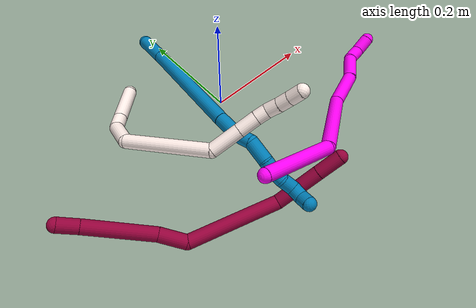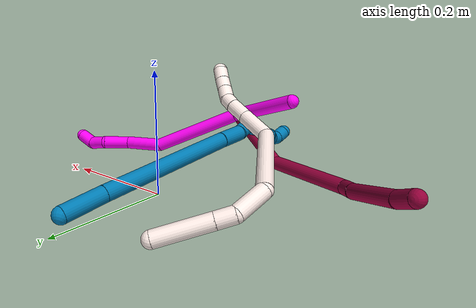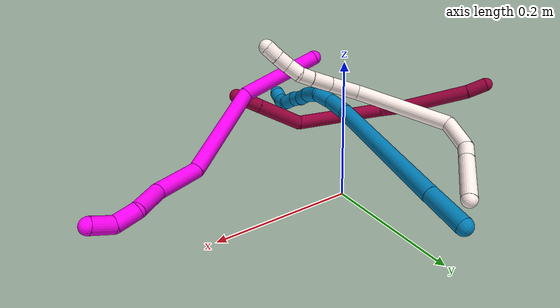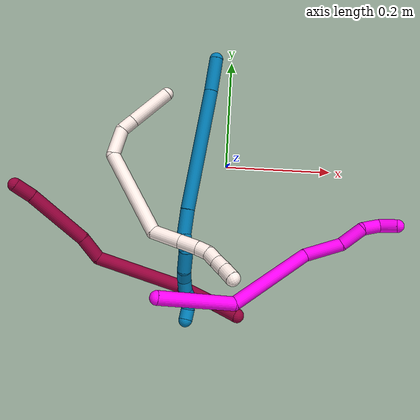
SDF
<sdf version="1.7">
 <world name="default">
  <model name="8">
   <static>0</static>
   <link name="8">
    <collision name="collision-cylinder-e_1_1_4">
     <pose>-0.00521 -0.015002 0.008292 1.06584 -0.295058 -0.174866</pose>
     <geometry><cylinder><radius>0.0125</radius><length>0.03583</length></cylinder></geometry>
     <surface>
      <friction><ode><mu>1.16</mu><mu2>1.16</mu2><slip1>0</slip1><slip2>0</slip2></ode></friction>
      <contact><ode><kp>1e+06</kp><kd>1</kd><max_vel>0</max_vel><min_depth>0.001</min_depth></ode></contact>
     </surface>
    </collision>
    <visual name="visual-cylinder-e_1_1_4">
     <pose>-0.00521 -0.015002 0.008292 1.06584 -0.295058 -0.174866</pose>
     <geometry><cylinder><radius>0.0125</radius><length>0.03583</length></cylinder></geometry>
     <material><ambient>0.584314 0 0.227451 1</ambient></material>
    </visual>
    <collision name="collision-cylinder-e_2_4_5">
     <pose>-0.020516 -0.07966 0.049254 0.988886 -0.168262 -0.090863</pose>
     <geometry><cylinder><radius>0.0125</radius><length>0.120581</length></cylinder></geometry>
     <surface>
      <friction><ode><mu>1.16</mu><mu2>1.16</mu2><slip1>0</slip1><slip2>0</slip2></ode></friction>
      <contact><ode><kp>1e+06</kp><kd>1</kd><max_vel>0</max_vel><min_depth>0.001</min_depth></ode></contact>
     </surface>
    </collision>
    <visual name="visual-cylinder-e_2_4_5">
     <pose>-0.020516 -0.07966 0.049254 0.988886 -0.168262 -0.090863</pose>
     <geometry><cylinder><radius>0.0125</radius><length>0.120581</length></cylinder></geometry>
     <material><ambient>0.584314 0 0.227451 1</ambient></material>
    </visual>
    <collision name="collision-cylinder-e_3_5_6">
     <pose>-0.033212 -0.146667 0.098704 0.802098 -0.107264 -0.045519</pose>
     <geometry><cylinder><radius>0.0125</radius><length>0.048556</length></cylinder></geometry>
     <surface>
      <friction><ode><mu>1.16</mu><mu2>1.16</mu2><slip1>0</slip1><slip2>0</slip2></ode></friction>
      <contact><ode><kp>1e+06</kp><kd>1</kd><max_vel>0</max_vel><min_depth>0.001</min_depth></ode></contact>
     </surface>
    </collision>
    <visual name="visual-cylinder-e_3_5_6">
     <pose>-0.033212 -0.146667 0.098704 0.802098 -0.107264 -0.045519</pose>
     <geometry><cylinder><radius>0.0125</radius><length>0.048556</length></cylinder></geometry>
     <material><ambient>0.584314 0 0.227451 1</ambient></material>
    </visual>
    <collision name="collision-cylinder-e_4_6_7">
     <pose>-0.031645 -0.245933 0.125054 1.45451 0.050478 0.044926</pose>
     <geometry><cylinder><radius>0.0125</radius><length>0.165153</length></cylinder></geometry>
     <surface>
      <friction><ode><mu>1.16</mu><mu2>1.16</mu2><slip1>0</slip1><slip2>0</slip2></ode></friction>
      <contact><ode><kp>1e+06</kp><kd>1</kd><max_vel>0</max_vel><min_depth>0.001</min_depth></ode></contact>
     </surface>
    </collision>
    <visual name="visual-cylinder-e_4_6_7">
     <pose>-0.031645 -0.245933 0.125054 1.45451 0.050478 0.044926</pose>
     <geometry><cylinder><radius>0.0125</radius><length>0.165153</length></cylinder></geometry>
     <material><ambient>0.584314 0 0.227451 1</ambient></material>
    </visual>
    <collision name="collision-cylinder-e_5_7_8">
     <pose>-0.003542 -0.363113 0.135702 1.5402 0.596108 0.579144</pose>
     <geometry><cylinder><radius>0.0125</radius><length>0.085271</length></cylinder></geometry>
     <surface>
      <friction><ode><mu>1.16</mu><mu2>1.16</mu2><slip1>0</slip1><slip2>0</slip2></ode></friction>
      <contact><ode><kp>1e+06</kp><kd>1</kd><max_vel>0</max_vel><min_depth>0.001</min_depth></ode></contact>
     </surface>
    </collision>
    <visual name="visual-cylinder-e_5_7_8">
     <pose>-0.003542 -0.363113 0.135702 1.5402 0.596108 0.579144</pose>
     <geometry><cylinder><radius>0.0125</radius><length>0.085271</length></cylinder></geometry>
     <material><ambient>0.584314 0 0.227451 1</ambient></material>
    </visual>
    <collision name="collision-cylinder-e_6_8_2">
     <pose>0.03307 -0.416717 0.137496 1.53185 0.604405 0.582621</pose>
     <geometry><cylinder><radius>0.0125</radius><length>0.044608</length></cylinder></geometry>
     <surface>
      <friction><ode><mu>1.16</mu><mu2>1.16</mu2><slip1>0</slip1><slip2>0</slip2></ode></friction>
      <contact><ode><kp>1e+06</kp><kd>1</kd><max_vel>0</max_vel><min_depth>0.001</min_depth></ode></contact>
     </surface>
    </collision>
    <visual name="visual-cylinder-e_6_8_2">
     <pose>0.03307 -0.416717 0.137496 1.53185 0.604405 0.582621</pose>
     <geometry><cylinder><radius>0.0125</radius><length>0.044608</length></cylinder></geometry>
     <material><ambient>0.584314 0 0.227451 1</ambient></material>
    </visual>
    <collision name="collision-sphere-2">
     <pose>0.045745 -0.435056 0.13821 0 -0 0</pose>
     <geometry><sphere><radius>0.0125</radius></sphere></geometry>
     <surface>
      <friction><ode><mu>1.16</mu><mu2>1.16</mu2><slip1>0</slip1><slip2>0</slip2></ode></friction>
      <contact><ode><kp>1e+06</kp><kd>1</kd><max_vel>0</max_vel><min_depth>0.001</min_depth></ode></contact>
     </surface>
    </collision>
    <visual name="visual-sphere-2">
     <pose>0.045745 -0.435056 0.13821 0 -0 0</pose>
     <geometry><sphere><radius>0.0125</radius></sphere></geometry>
     <material><ambient>0.584314 0 0.227451 1</ambient></material>
    </visual>
    <collision name="collision-sphere-4">
     <pose>-0.010419 -0.030003 0.016585 0 -0 0</pose>
     <geometry><sphere><radius>0.0125</radius></sphere></geometry>
     <surface>
      <friction><ode><mu>1.16</mu><mu2>1.16</mu2><slip1>0</slip1><slip2>0</slip2></ode></friction>
      <contact><ode><kp>1e+06</kp><kd>1</kd><max_vel>0</max_vel><min_depth>0.001</min_depth></ode></contact>
     </surface>
    </collision>
    <visual name="visual-sphere-4">
     <pose>-0.010419 -0.030003 0.016585 0 -0 0</pose>
     <geometry><sphere><radius>0.0125</radius></sphere></geometry>
     <material><ambient>0.584314 0 0.227451 1</ambient></material>
    </visual>
    <collision name="collision-sphere-1">
     <geometry><sphere><radius>0.0125</radius></sphere></geometry>
     <surface>
      <friction><ode><mu>1.16</mu><mu2>1.16</mu2><slip1>0</slip1><slip2>0</slip2></ode></friction>
      <contact><ode><kp>1e+06</kp><kd>1</kd><max_vel>0</max_vel><min_depth>0.001</min_depth></ode></contact>
     </surface>
    </collision>
    <visual name="visual-sphere-1">
     <geometry><sphere><radius>0.0125</radius></sphere></geometry>
     <material><ambient>0.584314 0 0.227451 1</ambient></material>
    </visual>
    <collision name="collision-sphere-8">
     <pose>0.020395 -0.398378 0.136781 0 -0 0</pose>
     <geometry><sphere><radius>0.0125</radius></sphere></geometry>
     <surface>
      <friction><ode><mu>1.16</mu><mu2>1.16</mu2><slip1>0</slip1><slip2>0</slip2></ode></friction>
      <contact><ode><kp>1e+06</kp><kd>1</kd><max_vel>0</max_vel><min_depth>0.001</min_depth></ode></contact>
     </surface>
    </collision>
    <visual name="visual-sphere-8">
     <pose>0.020395 -0.398378 0.136781 0 -0 0</pose>
     <geometry><sphere><radius>0.0125</radius></sphere></geometry>
     <material><ambient>0.584314 0 0.227451 1</ambient></material>
    </visual>
    <collision name="collision-sphere-5">
     <pose>-0.030613 -0.129316 0.081923 0 -0 0</pose>
     <geometry><sphere><radius>0.0125</radius></sphere></geometry>
     <surface>
      <friction><ode><mu>1.16</mu><mu2>1.16</mu2><slip1>0</slip1><slip2>0</slip2></ode></friction>
      <contact><ode><kp>1e+06</kp><kd>1</kd><max_vel>0</max_vel><min_depth>0.001</min_depth></ode></contact>
     </surface>
    </collision>
    <visual name="visual-sphere-5">
     <pose>-0.030613 -0.129316 0.081923 0 -0 0</pose>
     <geometry><sphere><radius>0.0125</radius></sphere></geometry>
     <material><ambient>0.584314 0 0.227451 1</ambient></material>
    </visual>
    <collision name="collision-sphere-6">
     <pose>-0.035811 -0.164018 0.115485 0 -0 0</pose>
     <geometry><sphere><radius>0.0125</radius></sphere></geometry>
     <surface>
      <friction><ode><mu>1.16</mu><mu2>1.16</mu2><slip1>0</slip1><slip2>0</slip2></ode></friction>
      <contact><ode><kp>1e+06</kp><kd>1</kd><max_vel>0</max_vel><min_depth>0.001</min_depth></ode></contact>
     </surface>
    </collision>
    <visual name="visual-sphere-6">
     <pose>-0.035811 -0.164018 0.115485 0 -0 0</pose>
     <geometry><sphere><radius>0.0125</radius></sphere></geometry>
     <material><ambient>0.584314 0 0.227451 1</ambient></material>
    </visual>
    <collision name="collision-sphere-7">
     <pose>-0.027478 -0.327847 0.134622 0 -0 0</pose>
     <geometry><sphere><radius>0.0125</radius></sphere></geometry>
     <surface>
      <friction><ode><mu>1.16</mu><mu2>1.16</mu2><slip1>0</slip1><slip2>0</slip2></ode></friction>
      <contact><ode><kp>1e+06</kp><kd>1</kd><max_vel>0</max_vel><min_depth>0.001</min_depth></ode></contact>
     </surface>
    </collision>
    <visual name="visual-sphere-7">
     <pose>-0.027478 -0.327847 0.134622 0 -0 0</pose>
     <geometry><sphere><radius>0.0125</radius></sphere></geometry>
     <material><ambient>0.584314 0 0.227451 1</ambient></material>
    </visual>
    <inertial>
     <pose>-0.016652 -0.214866 0.098773 0 -0 0</pose>
     <mass>0.5</mass>
     <inertia>
      <ixx>0.000625</ixx>
      <ixy>0</ixy>
      <ixz>0</ixz>
      <iyy>0.000159</iyy>
      <iyz>0</iyz>
      <izz>0.000552</izz>
     </inertia>
    </inertial>
   </link>
   <pose>-0.376206 -0.055043 0.075287 2.84258 -1.40714 -1.43195</pose>
  </model>
  <model name="9">
   <static>0</static>
   <link name="9">
    <collision name="collision-cylinder-e_1_1_4">
     <pose>-0.006386 -0.02038 0.023291 0.718838 -0.203482 -0.076683</pose>
     <geometry><cylinder><radius>0.0125</radius><length>0.063201</length></cylinder></geometry>
     <surface>
      <friction><ode><mu>1.16</mu><mu2>1.16</mu2><slip1>0</slip1><slip2>0</slip2></ode></friction>
      <contact><ode><kp>1e+06</kp><kd>1</kd><max_vel>0</max_vel><min_depth>0.001</min_depth></ode></contact>
     </surface>
    </collision>
    <visual name="visual-cylinder-e_1_1_4">
     <pose>-0.006386 -0.02038 0.023291 0.718838 -0.203482 -0.076683</pose>
     <geometry><cylinder><radius>0.0125</radius><length>0.063201</length></cylinder></geometry>
     <material><ambient>0 0.490196 0.709804 1</ambient></material>
    </visual>
    <collision name="collision-cylinder-e_2_4_5">
     <pose>-0.037065 -0.113349 0.125171 0.745733 -0.223293 -0.087653</pose>
     <geometry><cylinder><radius>0.0125</radius><length>0.219413</length></cylinder></geometry>
     <surface>
      <friction><ode><mu>1.16</mu><mu2>1.16</mu2><slip1>0</slip1><slip2>0</slip2></ode></friction>
      <contact><ode><kp>1e+06</kp><kd>1</kd><max_vel>0</max_vel><min_depth>0.001</min_depth></ode></contact>
     </surface>
    </collision>
    <visual name="visual-cylinder-e_2_4_5">
     <pose>-0.037065 -0.113349 0.125171 0.745733 -0.223293 -0.087653</pose>
     <geometry><cylinder><radius>0.0125</radius><length>0.219413</length></cylinder></geometry>
     <material><ambient>0 0.490196 0.709804 1</ambient></material>
    </visual>
    <collision name="collision-cylinder-e_3_5_6">
     <pose>-0.064654 -0.201155 0.219177 0.778826 -0.150949 -0.062043</pose>
     <geometry><cylinder><radius>0.0125</radius><length>0.043823</length></cylinder></geometry>
     <surface>
      <friction><ode><mu>1.16</mu><mu2>1.16</mu2><slip1>0</slip1><slip2>0</slip2></ode></friction>
      <contact><ode><kp>1e+06</kp><kd>1</kd><max_vel>0</max_vel><min_depth>0.001</min_depth></ode></contact>
     </surface>
    </collision>
    <visual name="visual-cylinder-e_3_5_6">
     <pose>-0.064654 -0.201155 0.219177 0.778826 -0.150949 -0.062043</pose>
     <geometry><cylinder><radius>0.0125</radius><length>0.043823</length></cylinder></geometry>
     <material><ambient>0 0.490196 0.709804 1</ambient></material>
    </visual>
    <collision name="collision-cylinder-e_4_6_7">
     <pose>-0.06723 -0.224615 0.246901 0.590248 0.048519 0.014752</pose>
     <geometry><cylinder><radius>0.0125</radius><length>0.029658</length></cylinder></geometry>
     <surface>
      <friction><ode><mu>1.16</mu><mu2>1.16</mu2><slip1>0</slip1><slip2>0</slip2></ode></friction>
      <contact><ode><kp>1e+06</kp><kd>1</kd><max_vel>0</max_vel><min_depth>0.001</min_depth></ode></contact>
     </surface>
    </collision>
    <visual name="visual-cylinder-e_4_6_7">
     <pose>-0.06723 -0.224615 0.246901 0.590248 0.048519 0.014752</pose>
     <geometry><cylinder><radius>0.0125</radius><length>0.029658</length></cylinder></geometry>
     <material><ambient>0 0.490196 0.709804 1</ambient></material>
    </visual>
    <collision name="collision-cylinder-e_5_7_8">
     <pose>-0.065117 -0.250247 0.267529 1.12436 0.072164 0.045474</pose>
     <geometry><cylinder><radius>0.0125</radius><length>0.038656</length></cylinder></geometry>
     <surface>
      <friction><ode><mu>1.16</mu><mu2>1.16</mu2><slip1>0</slip1><slip2>0</slip2></ode></friction>
      <contact><ode><kp>1e+06</kp><kd>1</kd><max_vel>0</max_vel><min_depth>0.001</min_depth></ode></contact>
     </surface>
    </collision>
    <visual name="visual-cylinder-e_5_7_8">
     <pose>-0.065117 -0.250247 0.267529 1.12436 0.072164 0.045474</pose>
     <geometry><cylinder><radius>0.0125</radius><length>0.038656</length></cylinder></geometry>
     <material><ambient>0 0.490196 0.709804 1</ambient></material>
    </visual>
    <collision name="collision-cylinder-e_6_8_9">
     <pose>-0.060798 -0.277927 0.278424 1.32593 0.269034 0.210573</pose>
     <geometry><cylinder><radius>0.0125</radius><length>0.022009</length></cylinder></geometry>
     <surface>
      <friction><ode><mu>1.16</mu><mu2>1.16</mu2><slip1>0</slip1><slip2>0</slip2></ode></friction>
      <contact><ode><kp>1e+06</kp><kd>1</kd><max_vel>0</max_vel><min_depth>0.001</min_depth></ode></contact>
     </surface>
    </collision>
    <visual name="visual-cylinder-e_6_8_9">
     <pose>-0.060798 -0.277927 0.278424 1.32593 0.269034 0.210573</pose>
     <geometry><cylinder><radius>0.0125</radius><length>0.022009</length></cylinder></geometry>
     <material><ambient>0 0.490196 0.709804 1</ambient></material>
    </visual>
    <collision name="collision-cylinder-e_7_9_10">
     <pose>-0.055631 -0.297015 0.285984 1.05494 0.218253 0.127471</pose>
     <geometry><cylinder><radius>0.0125</radius><length>0.020714</length></cylinder></geometry>
     <surface>
      <friction><ode><mu>1.16</mu><mu2>1.16</mu2><slip1>0</slip1><slip2>0</slip2></ode></friction>
      <contact><ode><kp>1e+06</kp><kd>1</kd><max_vel>0</max_vel><min_depth>0.001</min_depth></ode></contact>
     </surface>
    </collision>
    <visual name="visual-cylinder-e_7_9_10">
     <pose>-0.055631 -0.297015 0.285984 1.05494 0.218253 0.127471</pose>
     <geometry><cylinder><radius>0.0125</radius><length>0.020714</length></cylinder></geometry>
     <material><ambient>0 0.490196 0.709804 1</ambient></material>
    </visual>
    <collision name="collision-cylinder-e_8_10_11">
     <pose>-0.0478 -0.31459 0.294772 1.16224 0.528658 0.351852</pose>
     <geometry><cylinder><radius>0.0125</radius><length>0.022158</length></cylinder></geometry>
     <surface>
      <friction><ode><mu>1.16</mu><mu2>1.16</mu2><slip1>0</slip1><slip2>0</slip2></ode></friction>
      <contact><ode><kp>1e+06</kp><kd>1</kd><max_vel>0</max_vel><min_depth>0.001</min_depth></ode></contact>
     </surface>
    </collision>
    <visual name="visual-cylinder-e_8_10_11">
     <pose>-0.0478 -0.31459 0.294772 1.16224 0.528658 0.351852</pose>
     <geometry><cylinder><radius>0.0125</radius><length>0.022158</length></cylinder></geometry>
     <material><ambient>0 0.490196 0.709804 1</ambient></material>
    </visual>
    <collision name="collision-cylinder-e_9_11_12">
     <pose>-0.042519 -0.33147 0.304637 0.92822 -0.030314 -0.015176</pose>
     <geometry><cylinder><radius>0.0125</radius><length>0.020248</length></cylinder></geometry>
     <surface>
      <friction><ode><mu>1.16</mu><mu2>1.16</mu2><slip1>0</slip1><slip2>0</slip2></ode></friction>
      <contact><ode><kp>1e+06</kp><kd>1</kd><max_vel>0</max_vel><min_depth>0.001</min_depth></ode></contact>
     </surface>
    </collision>
    <visual name="visual-cylinder-e_9_11_12">
     <pose>-0.042519 -0.33147 0.304637 0.92822 -0.030314 -0.015176</pose>
     <geometry><cylinder><radius>0.0125</radius><length>0.020248</length></cylinder></geometry>
     <material><ambient>0 0.490196 0.709804 1</ambient></material>
    </visual>
    <collision name="collision-cylinder-e_10_12_2">
     <pose>-0.046401 -0.344315 0.31882 0.52875 -0.363335 -0.099374</pose>
     <geometry><cylinder><radius>0.0125</radius><length>0.02012</length></cylinder></geometry>
     <surface>
      <friction><ode><mu>1.16</mu><mu2>1.16</mu2><slip1>0</slip1><slip2>0</slip2></ode></friction>
      <contact><ode><kp>1e+06</kp><kd>1</kd><max_vel>0</max_vel><min_depth>0.001</min_depth></ode></contact>
     </surface>
    </collision>
    <visual name="visual-cylinder-e_10_12_2">
     <pose>-0.046401 -0.344315 0.31882 0.52875 -0.363335 -0.099374</pose>
     <geometry><cylinder><radius>0.0125</radius><length>0.02012</length></cylinder></geometry>
     <material><ambient>0 0.490196 0.709804 1</ambient></material>
    </visual>
    <collision name="collision-sphere-2">
     <pose>-0.049976 -0.349058 0.326939 0 -0 0</pose>
     <geometry><sphere><radius>0.0125</radius></sphere></geometry>
     <surface>
      <friction><ode><mu>1.16</mu><mu2>1.16</mu2><slip1>0</slip1><slip2>0</slip2></ode></friction>
      <contact><ode><kp>1e+06</kp><kd>1</kd><max_vel>0</max_vel><min_depth>0.001</min_depth></ode></contact>
     </surface>
    </collision>
    <visual name="visual-sphere-2">
     <pose>-0.049976 -0.349058 0.326939 0 -0 0</pose>
     <geometry><sphere><radius>0.0125</radius></sphere></geometry>
     <material><ambient>0 0.490196 0.709804 1</ambient></material>
    </visual>
    <collision name="collision-sphere-12">
     <pose>-0.042826 -0.339571 0.310701 0 -0 0</pose>
     <geometry><sphere><radius>0.0125</radius></sphere></geometry>
     <surface>
      <friction><ode><mu>1.16</mu><mu2>1.16</mu2><slip1>0</slip1><slip2>0</slip2></ode></friction>
      <contact><ode><kp>1e+06</kp><kd>1</kd><max_vel>0</max_vel><min_depth>0.001</min_depth></ode></contact>
     </surface>
    </collision>
    <visual name="visual-sphere-12">
     <pose>-0.042826 -0.339571 0.310701 0 -0 0</pose>
     <geometry><sphere><radius>0.0125</radius></sphere></geometry>
     <material><ambient>0 0.490196 0.709804 1</ambient></material>
    </visual>
    <collision name="collision-sphere-11">
     <pose>-0.042212 -0.323369 0.298573 0 -0 0</pose>
     <geometry><sphere><radius>0.0125</radius></sphere></geometry>
     <surface>
      <friction><ode><mu>1.16</mu><mu2>1.16</mu2><slip1>0</slip1><slip2>0</slip2></ode></friction>
      <contact><ode><kp>1e+06</kp><kd>1</kd><max_vel>0</max_vel><min_depth>0.001</min_depth></ode></contact>
     </surface>
    </collision>
    <visual name="visual-sphere-11">
     <pose>-0.042212 -0.323369 0.298573 0 -0 0</pose>
     <geometry><sphere><radius>0.0125</radius></sphere></geometry>
     <material><ambient>0 0.490196 0.709804 1</ambient></material>
    </visual>
    <collision name="collision-sphere-10">
     <pose>-0.053388 -0.305811 0.290972 0 -0 0</pose>
     <geometry><sphere><radius>0.0125</radius></sphere></geometry>
     <surface>
      <friction><ode><mu>1.16</mu><mu2>1.16</mu2><slip1>0</slip1><slip2>0</slip2></ode></friction>
      <contact><ode><kp>1e+06</kp><kd>1</kd><max_vel>0</max_vel><min_depth>0.001</min_depth></ode></contact>
     </surface>
    </collision>
    <visual name="visual-sphere-10">
     <pose>-0.053388 -0.305811 0.290972 0 -0 0</pose>
     <geometry><sphere><radius>0.0125</radius></sphere></geometry>
     <material><ambient>0 0.490196 0.709804 1</ambient></material>
    </visual>
    <collision name="collision-sphere-9">
     <pose>-0.057873 -0.28822 0.280996 0 -0 0</pose>
     <geometry><sphere><radius>0.0125</radius></sphere></geometry>
     <surface>
      <friction><ode><mu>1.16</mu><mu2>1.16</mu2><slip1>0</slip1><slip2>0</slip2></ode></friction>
      <contact><ode><kp>1e+06</kp><kd>1</kd><max_vel>0</max_vel><min_depth>0.001</min_depth></ode></contact>
     </surface>
    </collision>
    <visual name="visual-sphere-9">
     <pose>-0.057873 -0.28822 0.280996 0 -0 0</pose>
     <geometry><sphere><radius>0.0125</radius></sphere></geometry>
     <material><ambient>0 0.490196 0.709804 1</ambient></material>
    </visual>
    <collision name="collision-sphere-4">
     <pose>-0.012772 -0.04076 0.046582 0 -0 0</pose>
     <geometry><sphere><radius>0.0125</radius></sphere></geometry>
     <surface>
      <friction><ode><mu>1.16</mu><mu2>1.16</mu2><slip1>0</slip1><slip2>0</slip2></ode></friction>
      <contact><ode><kp>1e+06</kp><kd>1</kd><max_vel>0</max_vel><min_depth>0.001</min_depth></ode></contact>
     </surface>
    </collision>
    <visual name="visual-sphere-4">
     <pose>-0.012772 -0.04076 0.046582 0 -0 0</pose>
     <geometry><sphere><radius>0.0125</radius></sphere></geometry>
     <material><ambient>0 0.490196 0.709804 1</ambient></material>
    </visual>
    <collision name="collision-sphere-1">
     <geometry><sphere><radius>0.0125</radius></sphere></geometry>
     <surface>
      <friction><ode><mu>1.16</mu><mu2>1.16</mu2><slip1>0</slip1><slip2>0</slip2></ode></friction>
      <contact><ode><kp>1e+06</kp><kd>1</kd><max_vel>0</max_vel><min_depth>0.001</min_depth></ode></contact>
     </surface>
    </collision>
    <visual name="visual-sphere-1">
     <geometry><sphere><radius>0.0125</radius></sphere></geometry>
     <material><ambient>0 0.490196 0.709804 1</ambient></material>
    </visual>
    <collision name="collision-sphere-8">
     <pose>-0.063723 -0.267635 0.275853 0 -0 0</pose>
     <geometry><sphere><radius>0.0125</radius></sphere></geometry>
     <surface>
      <friction><ode><mu>1.16</mu><mu2>1.16</mu2><slip1>0</slip1><slip2>0</slip2></ode></friction>
      <contact><ode><kp>1e+06</kp><kd>1</kd><max_vel>0</max_vel><min_depth>0.001</min_depth></ode></contact>
     </surface>
    </collision>
    <visual name="visual-sphere-8">
     <pose>-0.063723 -0.267635 0.275853 0 -0 0</pose>
     <geometry><sphere><radius>0.0125</radius></sphere></geometry>
     <material><ambient>0 0.490196 0.709804 1</ambient></material>
    </visual>
    <collision name="collision-sphere-5">
     <pose>-0.061359 -0.185938 0.203759 0 -0 0</pose>
     <geometry><sphere><radius>0.0125</radius></sphere></geometry>
     <surface>
      <friction><ode><mu>1.16</mu><mu2>1.16</mu2><slip1>0</slip1><slip2>0</slip2></ode></friction>
      <contact><ode><kp>1e+06</kp><kd>1</kd><max_vel>0</max_vel><min_depth>0.001</min_depth></ode></contact>
     </surface>
    </collision>
    <visual name="visual-sphere-5">
     <pose>-0.061359 -0.185938 0.203759 0 -0 0</pose>
     <geometry><sphere><radius>0.0125</radius></sphere></geometry>
     <material><ambient>0 0.490196 0.709804 1</ambient></material>
    </visual>
    <collision name="collision-sphere-6">
     <pose>-0.067949 -0.216371 0.234595 0 -0 0</pose>
     <geometry><sphere><radius>0.0125</radius></sphere></geometry>
     <surface>
      <friction><ode><mu>1.16</mu><mu2>1.16</mu2><slip1>0</slip1><slip2>0</slip2></ode></friction>
      <contact><ode><kp>1e+06</kp><kd>1</kd><max_vel>0</max_vel><min_depth>0.001</min_depth></ode></contact>
     </surface>
    </collision>
    <visual name="visual-sphere-6">
     <pose>-0.067949 -0.216371 0.234595 0 -0 0</pose>
     <geometry><sphere><radius>0.0125</radius></sphere></geometry>
     <material><ambient>0 0.490196 0.709804 1</ambient></material>
    </visual>
    <collision name="collision-sphere-7">
     <pose>-0.06651 -0.232858 0.259206 0 -0 0</pose>
     <geometry><sphere><radius>0.0125</radius></sphere></geometry>
     <surface>
      <friction><ode><mu>1.16</mu><mu2>1.16</mu2><slip1>0</slip1><slip2>0</slip2></ode></friction>
      <contact><ode><kp>1e+06</kp><kd>1</kd><max_vel>0</max_vel><min_depth>0.001</min_depth></ode></contact>
     </surface>
    </collision>
    <visual name="visual-sphere-7">
     <pose>-0.06651 -0.232858 0.259206 0 -0 0</pose>
     <geometry><sphere><radius>0.0125</radius></sphere></geometry>
     <material><ambient>0 0.490196 0.709804 1</ambient></material>
    </visual>
    <inertial>
     <pose>-0.042449 -0.168376 0.174743 0 -0 0</pose>
     <mass>0.5</mass>
     <inertia>
      <ixx>0.000831</ixx>
      <ixy>0</ixy>
      <ixz>0</ixz>
      <iyy>0.000592</iyy>
      <iyz>0</iyz>
      <izz>0.00085</izz>
     </inertia>
    </inertial>
   </link>
   <pose>-0.030721 0.196438 0.042541 0.771554 0.495402 0.039993</pose>
  </model>
  <model name="10">
   <static>0</static>
   <link name="10">
    <collision name="collision-cylinder-e_1_1_4">
     <pose>0.000751 0.010917 0.069274 -0.156313 0.010704 -0.000838</pose>
     <geometry><cylinder><radius>0.0125</radius><length>0.140266</length></cylinder></geometry>
     <surface>
      <friction><ode><mu>1.16</mu><mu2>1.16</mu2><slip1>0</slip1><slip2>0</slip2></ode></friction>
      <contact><ode><kp>1e+06</kp><kd>1</kd><max_vel>0</max_vel><min_depth>0.001</min_depth></ode></contact>
     </surface>
    </collision>
    <visual name="visual-cylinder-e_1_1_4">
     <pose>0.000751 0.010917 0.069274 -0.156313 0.010704 -0.000838</pose>
     <geometry><cylinder><radius>0.0125</radius><length>0.140266</length></cylinder></geometry>
     <material><ambient>1 0 0.964706 1</ambient></material>
    </visual>
    <collision name="collision-cylinder-e_2_4_5">
     <pose>0.04338 0.005131 0.210841 0.227078 0.513849 0.0599</pose>
     <geometry><cylinder><radius>0.0125</radius><length>0.170402</length></cylinder></geometry>
     <surface>
      <friction><ode><mu>1.16</mu><mu2>1.16</mu2><slip1>0</slip1><slip2>0</slip2></ode></friction>
      <contact><ode><kp>1e+06</kp><kd>1</kd><max_vel>0</max_vel><min_depth>0.001</min_depth></ode></contact>
     </surface>
    </collision>
    <visual name="visual-cylinder-e_2_4_5">
     <pose>0.04338 0.005131 0.210841 0.227078 0.513849 0.0599</pose>
     <geometry><cylinder><radius>0.0125</radius><length>0.170402</length></cylinder></geometry>
     <material><ambient>1 0 0.964706 1</ambient></material>
    </visual>
    <collision name="collision-cylinder-e_3_5_6">
     <pose>0.103462 -0.00285 0.313219 -0.282237 0.526407 -0.076522</pose>
     <geometry><cylinder><radius>0.0125</radius><length>0.072458</length></cylinder></geometry>
     <surface>
      <friction><ode><mu>1.16</mu><mu2>1.16</mu2><slip1>0</slip1><slip2>0</slip2></ode></friction>
      <contact><ode><kp>1e+06</kp><kd>1</kd><max_vel>0</max_vel><min_depth>0.001</min_depth></ode></contact>
     </surface>
    </collision>
    <visual name="visual-cylinder-e_3_5_6">
     <pose>0.103462 -0.00285 0.313219 -0.282237 0.526407 -0.076522</pose>
     <geometry><cylinder><radius>0.0125</radius><length>0.072458</length></cylinder></geometry>
     <material><ambient>1 0 0.964706 1</ambient></material>
    </visual>
    <collision name="collision-cylinder-e_4_6_7">
     <pose>0.14058 0.007936 0.359454 -0.126954 0.860112 -0.058294</pose>
     <geometry><cylinder><radius>0.0125</radius><length>0.049915</length></cylinder></geometry>
     <surface>
      <friction><ode><mu>1.16</mu><mu2>1.16</mu2><slip1>0</slip1><slip2>0</slip2></ode></friction>
      <contact><ode><kp>1e+06</kp><kd>1</kd><max_vel>0</max_vel><min_depth>0.001</min_depth></ode></contact>
     </surface>
    </collision>
    <visual name="visual-cylinder-e_4_6_7">
     <pose>0.14058 0.007936 0.359454 -0.126954 0.860112 -0.058294</pose>
     <geometry><cylinder><radius>0.0125</radius><length>0.049915</length></cylinder></geometry>
     <material><ambient>1 0 0.964706 1</ambient></material>
    </visual>
    <collision name="collision-cylinder-e_5_7_8">
     <pose>0.165517 0.013056 0.391381 -0.19149 0.358495 -0.034799</pose>
     <geometry><cylinder><radius>0.0125</radius><length>0.034322</length></cylinder></geometry>
     <surface>
      <friction><ode><mu>1.16</mu><mu2>1.16</mu2><slip1>0</slip1><slip2>0</slip2></ode></friction>
      <contact><ode><kp>1e+06</kp><kd>1</kd><max_vel>0</max_vel><min_depth>0.001</min_depth></ode></contact>
     </surface>
    </collision>
    <visual name="visual-cylinder-e_5_7_8">
     <pose>0.165517 0.013056 0.391381 -0.19149 0.358495 -0.034799</pose>
     <geometry><cylinder><radius>0.0125</radius><length>0.034322</length></cylinder></geometry>
     <material><ambient>1 0 0.964706 1</ambient></material>
    </visual>
    <collision name="collision-cylinder-e_6_8_2">
     <pose>0.177773 0.026862 0.417736 -0.793355 0.392034 -0.16597</pose>
     <geometry><cylinder><radius>0.0125</radius><length>0.032637</length></cylinder></geometry>
     <surface>
      <friction><ode><mu>1.16</mu><mu2>1.16</mu2><slip1>0</slip1><slip2>0</slip2></ode></friction>
      <contact><ode><kp>1e+06</kp><kd>1</kd><max_vel>0</max_vel><min_depth>0.001</min_depth></ode></contact>
     </surface>
    </collision>
    <visual name="visual-cylinder-e_6_8_2">
     <pose>0.177773 0.026862 0.417736 -0.793355 0.392034 -0.16597</pose>
     <geometry><cylinder><radius>0.0125</radius><length>0.032637</length></cylinder></geometry>
     <material><ambient>1 0 0.964706 1</ambient></material>
    </visual>
    <collision name="collision-sphere-2">
     <pose>0.184008 0.03761 0.428314 0 -0 0</pose>
     <geometry><sphere><radius>0.0125</radius></sphere></geometry>
     <surface>
      <friction><ode><mu>1.16</mu><mu2>1.16</mu2><slip1>0</slip1><slip2>0</slip2></ode></friction>
      <contact><ode><kp>1e+06</kp><kd>1</kd><max_vel>0</max_vel><min_depth>0.001</min_depth></ode></contact>
     </surface>
    </collision>
    <visual name="visual-sphere-2">
     <pose>0.184008 0.03761 0.428314 0 -0 0</pose>
     <geometry><sphere><radius>0.0125</radius></sphere></geometry>
     <material><ambient>1 0 0.964706 1</ambient></material>
    </visual>
    <collision name="collision-sphere-4">
     <pose>0.001501 0.021835 0.138548 0 -0 0</pose>
     <geometry><sphere><radius>0.0125</radius></sphere></geometry>
     <surface>
      <friction><ode><mu>1.16</mu><mu2>1.16</mu2><slip1>0</slip1><slip2>0</slip2></ode></friction>
      <contact><ode><kp>1e+06</kp><kd>1</kd><max_vel>0</max_vel><min_depth>0.001</min_depth></ode></contact>
     </surface>
    </collision>
    <visual name="visual-sphere-4">
     <pose>0.001501 0.021835 0.138548 0 -0 0</pose>
     <geometry><sphere><radius>0.0125</radius></sphere></geometry>
     <material><ambient>1 0 0.964706 1</ambient></material>
    </visual>
    <collision name="collision-sphere-1">
     <geometry><sphere><radius>0.0125</radius></sphere></geometry>
     <surface>
      <friction><ode><mu>1.16</mu><mu2>1.16</mu2><slip1>0</slip1><slip2>0</slip2></ode></friction>
      <contact><ode><kp>1e+06</kp><kd>1</kd><max_vel>0</max_vel><min_depth>0.001</min_depth></ode></contact>
     </surface>
    </collision>
    <visual name="visual-sphere-1">
     <geometry><sphere><radius>0.0125</radius></sphere></geometry>
     <material><ambient>1 0 0.964706 1</ambient></material>
    </visual>
    <collision name="collision-sphere-8">
     <pose>0.171538 0.016114 0.407157 0 -0 0</pose>
     <geometry><sphere><radius>0.0125</radius></sphere></geometry>
     <surface>
      <friction><ode><mu>1.16</mu><mu2>1.16</mu2><slip1>0</slip1><slip2>0</slip2></ode></friction>
      <contact><ode><kp>1e+06</kp><kd>1</kd><max_vel>0</max_vel><min_depth>0.001</min_depth></ode></contact>
     </surface>
    </collision>
    <visual name="visual-sphere-8">
     <pose>0.171538 0.016114 0.407157 0 -0 0</pose>
     <geometry><sphere><radius>0.0125</radius></sphere></geometry>
     <material><ambient>1 0 0.964706 1</ambient></material>
    </visual>
    <collision name="collision-sphere-5">
     <pose>0.085259 -0.011574 0.283134 0 -0 0</pose>
     <geometry><sphere><radius>0.0125</radius></sphere></geometry>
     <surface>
      <friction><ode><mu>1.16</mu><mu2>1.16</mu2><slip1>0</slip1><slip2>0</slip2></ode></friction>
      <contact><ode><kp>1e+06</kp><kd>1</kd><max_vel>0</max_vel><min_depth>0.001</min_depth></ode></contact>
     </surface>
    </collision>
    <visual name="visual-sphere-5">
     <pose>0.085259 -0.011574 0.283134 0 -0 0</pose>
     <geometry><sphere><radius>0.0125</radius></sphere></geometry>
     <material><ambient>1 0 0.964706 1</ambient></material>
    </visual>
    <collision name="collision-sphere-6">
     <pose>0.121664 0.005874 0.343304 0 -0 0</pose>
     <geometry><sphere><radius>0.0125</radius></sphere></geometry>
     <surface>
      <friction><ode><mu>1.16</mu><mu2>1.16</mu2><slip1>0</slip1><slip2>0</slip2></ode></friction>
      <contact><ode><kp>1e+06</kp><kd>1</kd><max_vel>0</max_vel><min_depth>0.001</min_depth></ode></contact>
     </surface>
    </collision>
    <visual name="visual-sphere-6">
     <pose>0.121664 0.005874 0.343304 0 -0 0</pose>
     <geometry><sphere><radius>0.0125</radius></sphere></geometry>
     <material><ambient>1 0 0.964706 1</ambient></material>
    </visual>
    <collision name="collision-sphere-7">
     <pose>0.159496 0.009997 0.375604 0 -0 0</pose>
     <geometry><sphere><radius>0.0125</radius></sphere></geometry>
     <surface>
      <friction><ode><mu>1.16</mu><mu2>1.16</mu2><slip1>0</slip1><slip2>0</slip2></ode></friction>
      <contact><ode><kp>1e+06</kp><kd>1</kd><max_vel>0</max_vel><min_depth>0.001</min_depth></ode></contact>
     </surface>
    </collision>
    <visual name="visual-sphere-7">
     <pose>0.159496 0.009997 0.375604 0 -0 0</pose>
     <geometry><sphere><radius>0.0125</radius></sphere></geometry>
     <material><ambient>1 0 0.964706 1</ambient></material>
    </visual>
    <inertial>
     <pose>0.066988 0.00784 0.226697 0 -0 0</pose>
     <mass>0.5</mass>
     <inertia>
      <ixx>0.000678</ixx>
      <ixy>0</ixy>
      <ixz>0</ixz>
      <iyy>0.000717</iyy>
      <iyz>0</iyz>
      <izz>-0.000172</izz>
     </inertia>
    </inertial>
   </link>
   <pose>-0.106814 -0.227856 0.13211 2.07359 -0.316317 1.34411</pose>
  </model>
  <model name="11">
   <static>0</static>
   <link name="11">
    <collision name="collision-cylinder-e_1_1_4">
     <pose>-0.014089 -0.014857 -0.036205 2.75218 -0.345574 -1.44895</pose>
     <geometry><cylinder><radius>0.0125</radius><length>0.083187</length></cylinder></geometry>
     <surface>
      <friction><ode><mu>1.16</mu><mu2>1.16</mu2><slip1>0</slip1><slip2>0</slip2></ode></friction>
      <contact><ode><kp>1e+06</kp><kd>1</kd><max_vel>0</max_vel><min_depth>0.001</min_depth></ode></contact>
     </surface>
    </collision>
    <visual name="visual-cylinder-e_1_1_4">
     <pose>-0.014089 -0.014857 -0.036205 2.75218 -0.345574 -1.44895</pose>
     <geometry><cylinder><radius>0.0125</radius><length>0.083187</length></cylinder></geometry>
     <material><ambient>1 0.933333 0.909804 1</ambient></material>
    </visual>
    <collision name="collision-cylinder-e_2_4_5">
     <pose>-0.033038 -0.034741 -0.084511 2.74792 -0.355141 -1.46554</pose>
     <geometry><cylinder><radius>0.0125</radius><length>0.027953</length></cylinder></geometry>
     <surface>
      <friction><ode><mu>1.16</mu><mu2>1.16</mu2><slip1>0</slip1><slip2>0</slip2></ode></friction>
      <contact><ode><kp>1e+06</kp><kd>1</kd><max_vel>0</max_vel><min_depth>0.001</min_depth></ode></contact>
     </surface>
    </collision>
    <visual name="visual-cylinder-e_2_4_5">
     <pose>-0.033038 -0.034741 -0.084511 2.74792 -0.355141 -1.46554</pose>
     <geometry><cylinder><radius>0.0125</radius><length>0.027953</length></cylinder></geometry>
     <material><ambient>1 0.933333 0.909804 1</ambient></material>
    </visual>
    <collision name="collision-cylinder-e_3_5_6">
     <pose>-0.045449 -0.06084 -0.1106 2.15678 -0.290098 -0.531675</pose>
     <geometry><cylinder><radius>0.0125</radius><length>0.052791</length></cylinder></geometry>
     <surface>
      <friction><ode><mu>1.16</mu><mu2>1.16</mu2><slip1>0</slip1><slip2>0</slip2></ode></friction>
      <contact><ode><kp>1e+06</kp><kd>1</kd><max_vel>0</max_vel><min_depth>0.001</min_depth></ode></contact>
     </surface>
    </collision>
    <visual name="visual-cylinder-e_3_5_6">
     <pose>-0.045449 -0.06084 -0.1106 2.15678 -0.290098 -0.531675</pose>
     <geometry><cylinder><radius>0.0125</radius><length>0.052791</length></cylinder></geometry>
     <material><ambient>1 0.933333 0.909804 1</ambient></material>
    </visual>
    <collision name="collision-cylinder-e_4_6_7">
     <pose>-0.048929 -0.160928 -0.116902 1.47384 0.051223 0.046485</pose>
     <geometry><cylinder><radius>0.0125</radius><length>0.158984</length></cylinder></geometry>
     <surface>
      <friction><ode><mu>1.16</mu><mu2>1.16</mu2><slip1>0</slip1><slip2>0</slip2></ode></friction>
      <contact><ode><kp>1e+06</kp><kd>1</kd><max_vel>0</max_vel><min_depth>0.001</min_depth></ode></contact>
     </surface>
    </collision>
    <visual name="visual-cylinder-e_4_6_7">
     <pose>-0.048929 -0.160928 -0.116902 1.47384 0.051223 0.046485</pose>
     <geometry><cylinder><radius>0.0125</radius><length>0.158984</length></cylinder></geometry>
     <material><ambient>1 0.933333 0.909804 1</ambient></material>
    </visual>
    <collision name="collision-cylinder-e_5_7_8">
     <pose>-0.047841 -0.258143 -0.089039 0.733892 -0.109299 -0.042045</pose>
     <geometry><cylinder><radius>0.0125</radius><length>0.054673</length></cylinder></geometry>
     <surface>
      <friction><ode><mu>1.16</mu><mu2>1.16</mu2><slip1>0</slip1><slip2>0</slip2></ode></friction>
      <contact><ode><kp>1e+06</kp><kd>1</kd><max_vel>0</max_vel><min_depth>0.001</min_depth></ode></contact>
     </surface>
    </collision>
    <visual name="visual-cylinder-e_5_7_8">
     <pose>-0.047841 -0.258143 -0.089039 0.733892 -0.109299 -0.042045</pose>
     <geometry><cylinder><radius>0.0125</radius><length>0.054673</length></cylinder></geometry>
     <material><ambient>1 0.933333 0.909804 1</ambient></material>
    </visual>
    <collision name="collision-cylinder-e_6_8_9">
     <pose>-0.052895 -0.287789 -0.056264 0.737588 -0.121137 -0.046865</pose>
     <geometry><cylinder><radius>0.0125</radius><length>0.034293</length></cylinder></geometry>
     <surface>
      <friction><ode><mu>1.16</mu><mu2>1.16</mu2><slip1>0</slip1><slip2>0</slip2></ode></friction>
      <contact><ode><kp>1e+06</kp><kd>1</kd><max_vel>0</max_vel><min_depth>0.001</min_depth></ode></contact>
     </surface>
    </collision>
    <visual name="visual-cylinder-e_6_8_9">
     <pose>-0.052895 -0.287789 -0.056264 0.737588 -0.121137 -0.046865</pose>
     <geometry><cylinder><radius>0.0125</radius><length>0.034293</length></cylinder></geometry>
     <material><ambient>1 0.933333 0.909804 1</ambient></material>
    </visual>
    <collision name="collision-cylinder-e_7_9_10">
     <pose>-0.056377 -0.30678 -0.036577 0.816425 -0.135407 -0.058637</pose>
     <geometry><cylinder><radius>0.0125</radius><length>0.020899</length></cylinder></geometry>
     <surface>
      <friction><ode><mu>1.16</mu><mu2>1.16</mu2><slip1>0</slip1><slip2>0</slip2></ode></friction>
      <contact><ode><kp>1e+06</kp><kd>1</kd><max_vel>0</max_vel><min_depth>0.001</min_depth></ode></contact>
     </surface>
    </collision>
    <visual name="visual-cylinder-e_7_9_10">
     <pose>-0.056377 -0.30678 -0.036577 0.816425 -0.135407 -0.058637</pose>
     <geometry><cylinder><radius>0.0125</radius><length>0.020899</length></cylinder></geometry>
     <material><ambient>1 0.933333 0.909804 1</ambient></material>
    </visual>
    <collision name="collision-cylinder-e_8_10_11">
     <pose>-0.061889 -0.324114 -0.024826 1.1265 -0.361651 -0.229883</pose>
     <geometry><cylinder><radius>0.0125</radius><length>0.023182</length></cylinder></geometry>
     <surface>
      <friction><ode><mu>1.16</mu><mu2>1.16</mu2><slip1>0</slip1><slip2>0</slip2></ode></friction>
      <contact><ode><kp>1e+06</kp><kd>1</kd><max_vel>0</max_vel><min_depth>0.001</min_depth></ode></contact>
     </surface>
    </collision>
    <visual name="visual-cylinder-e_8_10_11">
     <pose>-0.061889 -0.324114 -0.024826 1.1265 -0.361651 -0.229883</pose>
     <geometry><cylinder><radius>0.0125</radius><length>0.023182</length></cylinder></geometry>
     <material><ambient>1 0.933333 0.909804 1</ambient></material>
    </visual>
    <collision name="collision-cylinder-e_9_11_12">
     <pose>-0.070281 -0.342435 -0.015753 1.09343 -0.420085 -0.258046</pose>
     <geometry><cylinder><radius>0.0125</radius><length>0.021042</length></cylinder></geometry>
     <surface>
      <friction><ode><mu>1.16</mu><mu2>1.16</mu2><slip1>0</slip1><slip2>0</slip2></ode></friction>
      <contact><ode><kp>1e+06</kp><kd>1</kd><max_vel>0</max_vel><min_depth>0.001</min_depth></ode></contact>
     </surface>
    </collision>
    <visual name="visual-cylinder-e_9_11_12">
     <pose>-0.070281 -0.342435 -0.015753 1.09343 -0.420085 -0.258046</pose>
     <geometry><cylinder><radius>0.0125</radius><length>0.021042</length></cylinder></geometry>
     <material><ambient>1 0.933333 0.909804 1</ambient></material>
    </visual>
    <collision name="collision-cylinder-e_10_12_2">
     <pose>-0.079866 -0.36016 -0.006903 1.12114 -0.478475 -0.303865</pose>
     <geometry><cylinder><radius>0.0125</radius><length>0.022997</length></cylinder></geometry>
     <surface>
      <friction><ode><mu>1.16</mu><mu2>1.16</mu2><slip1>0</slip1><slip2>0</slip2></ode></friction>
      <contact><ode><kp>1e+06</kp><kd>1</kd><max_vel>0</max_vel><min_depth>0.001</min_depth></ode></contact>
     </surface>
    </collision>
    <visual name="visual-cylinder-e_10_12_2">
     <pose>-0.079866 -0.36016 -0.006903 1.12114 -0.478475 -0.303865</pose>
     <geometry><cylinder><radius>0.0125</radius><length>0.022997</length></cylinder></geometry>
     <material><ambient>1 0.933333 0.909804 1</ambient></material>
    </visual>
    <collision name="collision-sphere-2">
     <pose>-0.08516 -0.369353 -0.002466 0 -0 0</pose>
     <geometry><sphere><radius>0.0125</radius></sphere></geometry>
     <surface>
      <friction><ode><mu>1.16</mu><mu2>1.16</mu2><slip1>0</slip1><slip2>0</slip2></ode></friction>
      <contact><ode><kp>1e+06</kp><kd>1</kd><max_vel>0</max_vel><min_depth>0.001</min_depth></ode></contact>
     </surface>
    </collision>
    <visual name="visual-sphere-2">
     <pose>-0.08516 -0.369353 -0.002466 0 -0 0</pose>
     <geometry><sphere><radius>0.0125</radius></sphere></geometry>
     <material><ambient>1 0.933333 0.909804 1</ambient></material>
    </visual>
    <collision name="collision-sphere-12">
     <pose>-0.074572 -0.350967 -0.01134 0 -0 0</pose>
     <geometry><sphere><radius>0.0125</radius></sphere></geometry>
     <surface>
      <friction><ode><mu>1.16</mu><mu2>1.16</mu2><slip1>0</slip1><slip2>0</slip2></ode></friction>
      <contact><ode><kp>1e+06</kp><kd>1</kd><max_vel>0</max_vel><min_depth>0.001</min_depth></ode></contact>
     </surface>
    </collision>
    <visual name="visual-sphere-12">
     <pose>-0.074572 -0.350967 -0.01134 0 -0 0</pose>
     <geometry><sphere><radius>0.0125</radius></sphere></geometry>
     <material><ambient>1 0.933333 0.909804 1</ambient></material>
    </visual>
    <collision name="collision-sphere-11">
     <pose>-0.06599 -0.333903 -0.020167 0 -0 0</pose>
     <geometry><sphere><radius>0.0125</radius></sphere></geometry>
     <surface>
      <friction><ode><mu>1.16</mu><mu2>1.16</mu2><slip1>0</slip1><slip2>0</slip2></ode></friction>
      <contact><ode><kp>1e+06</kp><kd>1</kd><max_vel>0</max_vel><min_depth>0.001</min_depth></ode></contact>
     </surface>
    </collision>
    <visual name="visual-sphere-11">
     <pose>-0.06599 -0.333903 -0.020167 0 -0 0</pose>
     <geometry><sphere><radius>0.0125</radius></sphere></geometry>
     <material><ambient>1 0.933333 0.909804 1</ambient></material>
    </visual>
    <collision name="collision-sphere-10">
     <pose>-0.057788 -0.314325 -0.029486 0 -0 0</pose>
     <geometry><sphere><radius>0.0125</radius></sphere></geometry>
     <surface>
      <friction><ode><mu>1.16</mu><mu2>1.16</mu2><slip1>0</slip1><slip2>0</slip2></ode></friction>
      <contact><ode><kp>1e+06</kp><kd>1</kd><max_vel>0</max_vel><min_depth>0.001</min_depth></ode></contact>
     </surface>
    </collision>
    <visual name="visual-sphere-10">
     <pose>-0.057788 -0.314325 -0.029486 0 -0 0</pose>
     <geometry><sphere><radius>0.0125</radius></sphere></geometry>
     <material><ambient>1 0.933333 0.909804 1</ambient></material>
    </visual>
    <collision name="collision-sphere-9">
     <pose>-0.054966 -0.299236 -0.043667 0 -0 0</pose>
     <geometry><sphere><radius>0.0125</radius></sphere></geometry>
     <surface>
      <friction><ode><mu>1.16</mu><mu2>1.16</mu2><slip1>0</slip1><slip2>0</slip2></ode></friction>
      <contact><ode><kp>1e+06</kp><kd>1</kd><max_vel>0</max_vel><min_depth>0.001</min_depth></ode></contact>
     </surface>
    </collision>
    <visual name="visual-sphere-9">
     <pose>-0.054966 -0.299236 -0.043667 0 -0 0</pose>
     <geometry><sphere><radius>0.0125</radius></sphere></geometry>
     <material><ambient>1 0.933333 0.909804 1</ambient></material>
    </visual>
    <collision name="collision-sphere-4">
     <pose>-0.028178 -0.029714 -0.072409 0 -0 0</pose>
     <geometry><sphere><radius>0.0125</radius></sphere></geometry>
     <surface>
      <friction><ode><mu>1.16</mu><mu2>1.16</mu2><slip1>0</slip1><slip2>0</slip2></ode></friction>
      <contact><ode><kp>1e+06</kp><kd>1</kd><max_vel>0</max_vel><min_depth>0.001</min_depth></ode></contact>
     </surface>
    </collision>
    <visual name="visual-sphere-4">
     <pose>-0.028178 -0.029714 -0.072409 0 -0 0</pose>
     <geometry><sphere><radius>0.0125</radius></sphere></geometry>
     <material><ambient>1 0.933333 0.909804 1</ambient></material>
    </visual>
    <collision name="collision-sphere-1">
     <geometry><sphere><radius>0.0125</radius></sphere></geometry>
     <surface>
      <friction><ode><mu>1.16</mu><mu2>1.16</mu2><slip1>0</slip1><slip2>0</slip2></ode></friction>
      <contact><ode><kp>1e+06</kp><kd>1</kd><max_vel>0</max_vel><min_depth>0.001</min_depth></ode></contact>
     </surface>
    </collision>
    <visual name="visual-sphere-1">
     <geometry><sphere><radius>0.0125</radius></sphere></geometry>
     <material><ambient>1 0.933333 0.909804 1</ambient></material>
    </visual>
    <collision name="collision-sphere-8">
     <pose>-0.050823 -0.276343 -0.068861 0 -0 0</pose>
     <geometry><sphere><radius>0.0125</radius></sphere></geometry>
     <surface>
      <friction><ode><mu>1.16</mu><mu2>1.16</mu2><slip1>0</slip1><slip2>0</slip2></ode></friction>
      <contact><ode><kp>1e+06</kp><kd>1</kd><max_vel>0</max_vel><min_depth>0.001</min_depth></ode></contact>
     </surface>
    </collision>
    <visual name="visual-sphere-8">
     <pose>-0.050823 -0.276343 -0.068861 0 -0 0</pose>
     <geometry><sphere><radius>0.0125</radius></sphere></geometry>
     <material><ambient>1 0.933333 0.909804 1</ambient></material>
    </visual>
    <collision name="collision-sphere-5">
     <pose>-0.037898 -0.039767 -0.096613 0 -0 0</pose>
     <geometry><sphere><radius>0.0125</radius></sphere></geometry>
     <surface>
      <friction><ode><mu>1.16</mu><mu2>1.16</mu2><slip1>0</slip1><slip2>0</slip2></ode></friction>
      <contact><ode><kp>1e+06</kp><kd>1</kd><max_vel>0</max_vel><min_depth>0.001</min_depth></ode></contact>
     </surface>
    </collision>
    <visual name="visual-sphere-5">
     <pose>-0.037898 -0.039767 -0.096613 0 -0 0</pose>
     <geometry><sphere><radius>0.0125</radius></sphere></geometry>
     <material><ambient>1 0.933333 0.909804 1</ambient></material>
    </visual>
    <collision name="collision-sphere-6">
     <pose>-0.052999 -0.081913 -0.124587 0 -0 0</pose>
     <geometry><sphere><radius>0.0125</radius></sphere></geometry>
     <surface>
      <friction><ode><mu>1.16</mu><mu2>1.16</mu2><slip1>0</slip1><slip2>0</slip2></ode></friction>
      <contact><ode><kp>1e+06</kp><kd>1</kd><max_vel>0</max_vel><min_depth>0.001</min_depth></ode></contact>
     </surface>
    </collision>
    <visual name="visual-sphere-6">
     <pose>-0.052999 -0.081913 -0.124587 0 -0 0</pose>
     <geometry><sphere><radius>0.0125</radius></sphere></geometry>
     <material><ambient>1 0.933333 0.909804 1</ambient></material>
    </visual>
    <collision name="collision-sphere-7">
     <pose>-0.044859 -0.239943 -0.109218 0 -0 0</pose>
     <geometry><sphere><radius>0.0125</radius></sphere></geometry>
     <surface>
      <friction><ode><mu>1.16</mu><mu2>1.16</mu2><slip1>0</slip1><slip2>0</slip2></ode></friction>
      <contact><ode><kp>1e+06</kp><kd>1</kd><max_vel>0</max_vel><min_depth>0.001</min_depth></ode></contact>
     </surface>
    </collision>
    <visual name="visual-sphere-7">
     <pose>-0.044859 -0.239943 -0.109218 0 -0 0</pose>
     <geometry><sphere><radius>0.0125</radius></sphere></geometry>
     <material><ambient>1 0.933333 0.909804 1</ambient></material>
    </visual>
    <inertial>
     <pose>-0.045263 -0.168799 -0.076852 0 -0 0</pose>
     <mass>0.5</mass>
     <inertia>
      <ixx>0.000334</ixx>
      <ixy>0</ixy>
      <ixz>0</ixz>
      <iyy>-2.4e-05</iyy>
      <iyz>0</iyz>
      <izz>0.000399</izz>
     </inertia>
    </inertial>
   </link>
   <pose>-0.121524 0.132048 0.01333 -0.952765 1.27446 -0.466773</pose>
  </model>
 </world>
</sdf>
